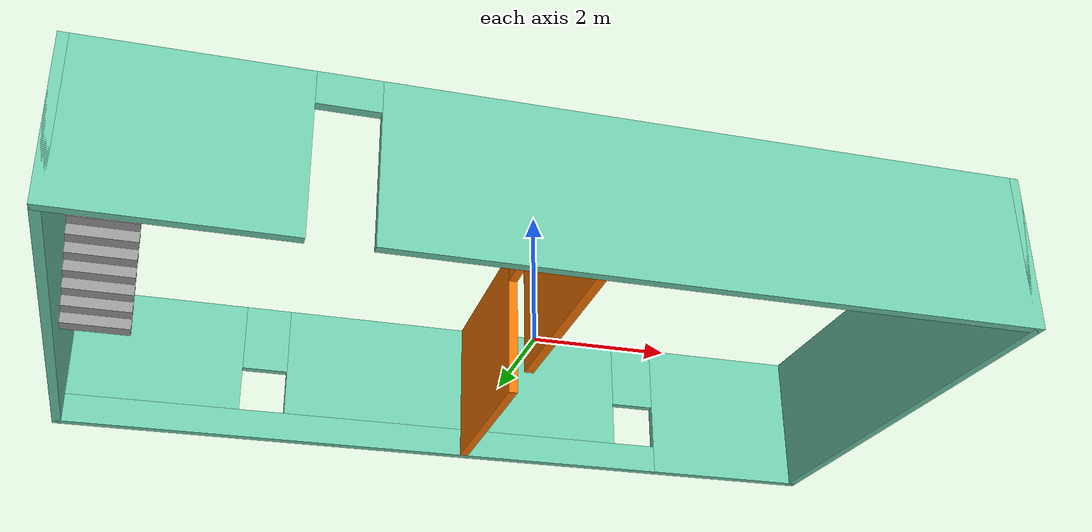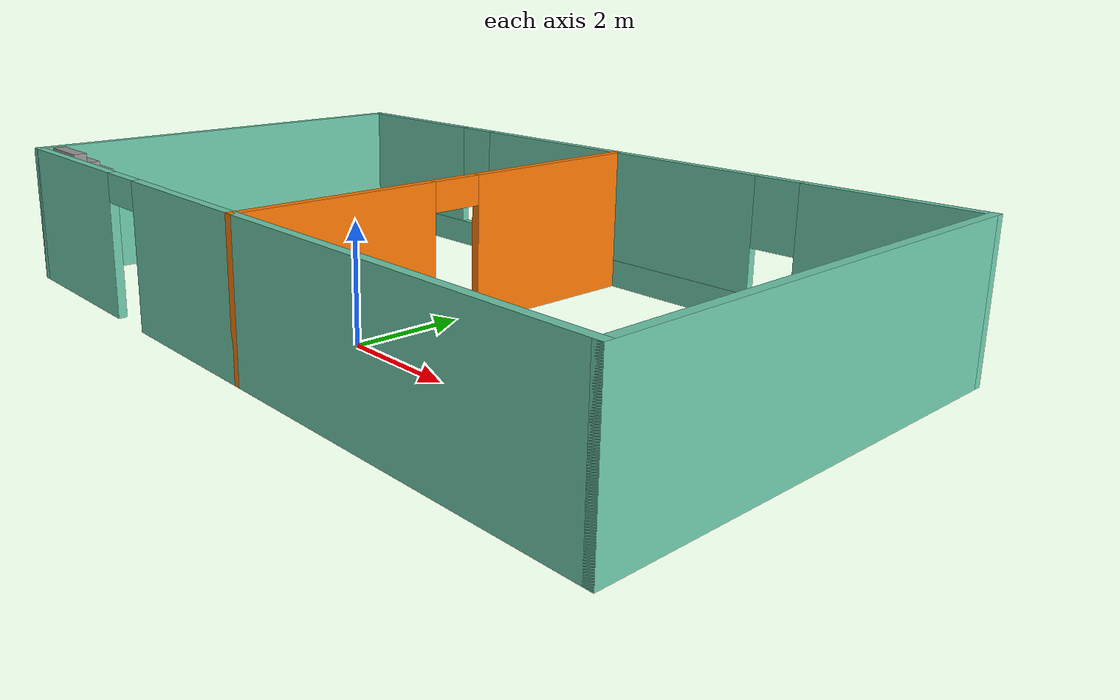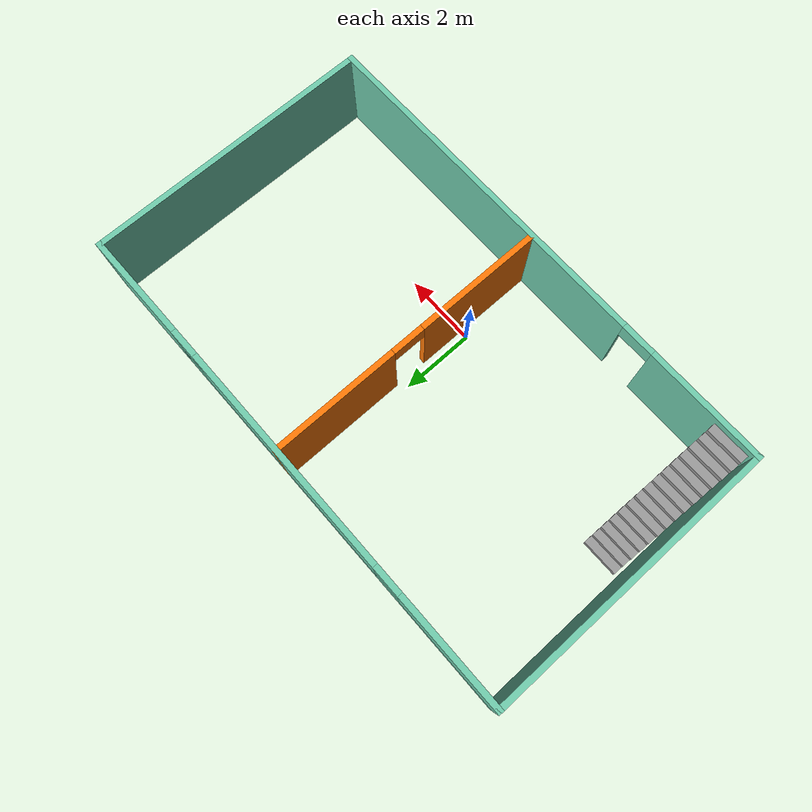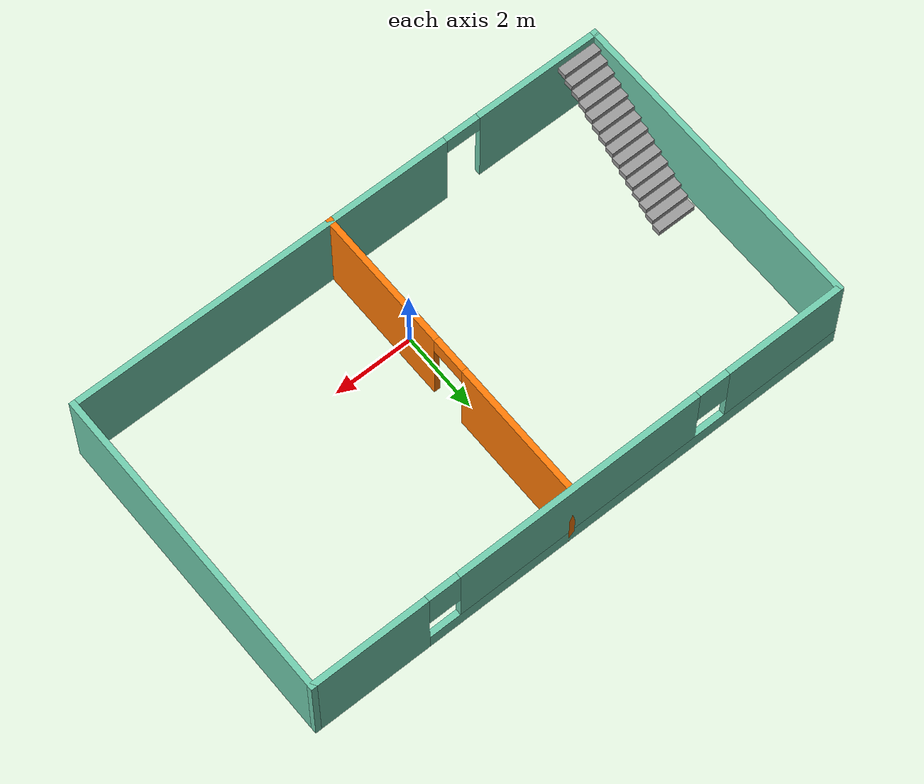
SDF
<?xml version='1.0'?>
<sdf version='1.6'>
  <model name='my_small_house'>
    <pose frame=''>0.022588 1.69125 0 0 -0 0</pose>
    <link name='Stairs_0'>
      <visual name='Stairs_0_Visual_0'>
        <pose frame=''>-6.25421 -0.363102 0.083333 0 -0 0</pose>
        <geometry>
          <box>
            <size>1 0.233333 0.166667</size>
          </box>
        </geometry>
        <material>
          <script>
            <uri>file://media/materials/scripts/gazebo.material</uri>
            <name>Gazebo/Grey</name>
          </script>
          <ambient>1 1 1 1</ambient>
        </material>
        <meta>
          <layer>0</layer>
        </meta>
      </visual>
      <collision name='Stairs_0_Collision_0'>
        <geometry>
          <box>
            <size>1 0.233333 0.166667</size>
          </box>
        </geometry>
        <pose frame=''>-6.25421 -0.363102 0.083333 0 -0 0</pose>
      </collision>
      <visual name='Stairs_0_Visual_1'>
        <pose frame=''>-6.25421 -0.596436 0.25 0 -0 0</pose>
        <geometry>
          <box>
            <size>1 0.233333 0.166667</size>
          </box>
        </geometry>
        <material>
          <script>
            <uri>file://media/materials/scripts/gazebo.material</uri>
            <name>Gazebo/Grey</name>
          </script>
          <ambient>1 1 1 1</ambient>
        </material>
        <meta>
          <layer>0</layer>
        </meta>
      </visual>
      <collision name='Stairs_0_Collision_1'>
        <geometry>
          <box>
            <size>1 0.233333 0.166667</size>
          </box>
        </geometry>
        <pose frame=''>-6.25421 -0.596436 0.25 0 -0 0</pose>
      </collision>
      <visual name='Stairs_0_Visual_2'>
        <pose frame=''>-6.25421 -0.829769 0.416667 0 -0 0</pose>
        <geometry>
          <box>
            <size>1 0.233333 0.166667</size>
          </box>
        </geometry>
        <material>
          <script>
            <uri>file://media/materials/scripts/gazebo.material</uri>
            <name>Gazebo/Grey</name>
          </script>
          <ambient>1 1 1 1</ambient>
        </material>
        <meta>
          <layer>0</layer>
        </meta>
      </visual>
      <collision name='Stairs_0_Collision_2'>
        <geometry>
          <box>
            <size>1 0.233333 0.166667</size>
          </box>
        </geometry>
        <pose frame=''>-6.25421 -0.829769 0.416667 0 -0 0</pose>
      </collision>
      <visual name='Stairs_0_Visual_3'>
        <pose frame=''>-6.25421 -1.0631 0.583333 0 -0 0</pose>
        <geometry>
          <box>
            <size>1 0.233333 0.166667</size>
          </box>
        </geometry>
        <material>
          <script>
            <uri>file://media/materials/scripts/gazebo.material</uri>
            <name>Gazebo/Grey</name>
          </script>
          <ambient>1 1 1 1</ambient>
        </material>
        <meta>
          <layer>0</layer>
        </meta>
      </visual>
      <collision name='Stairs_0_Collision_3'>
        <geometry>
          <box>
            <size>1 0.233333 0.166667</size>
          </box>
        </geometry>
        <pose frame=''>-6.25421 -1.0631 0.583333 0 -0 0</pose>
      </collision>
      <visual name='Stairs_0_Visual_4'>
        <pose frame=''>-6.25421 -1.29644 0.75 0 -0 0</pose>
        <geometry>
          <box>
            <size>1 0.233333 0.166667</size>
          </box>
        </geometry>
        <material>
          <script>
            <uri>file://media/materials/scripts/gazebo.material</uri>
            <name>Gazebo/Grey</name>
          </script>
          <ambient>1 1 1 1</ambient>
        </material>
        <meta>
          <layer>0</layer>
        </meta>
      </visual>
      <collision name='Stairs_0_Collision_4'>
        <geometry>
          <box>
            <size>1 0.233333 0.166667</size>
          </box>
        </geometry>
        <pose frame=''>-6.25421 -1.29644 0.75 0 -0 0</pose>
      </collision>
      <visual name='Stairs_0_Visual_5'>
        <pose frame=''>-6.25421 -1.52977 0.916667 0 -0 0</pose>
        <geometry>
          <box>
            <size>1 0.233333 0.166667</size>
          </box>
        </geometry>
        <material>
          <script>
            <uri>file://media/materials/scripts/gazebo.material</uri>
            <name>Gazebo/Grey</name>
          </script>
          <ambient>1 1 1 1</ambient>
        </material>
        <meta>
          <layer>0</layer>
        </meta>
      </visual>
      <collision name='Stairs_0_Collision_5'>
        <geometry>
          <box>
            <size>1 0.233333 0.166667</size>
          </box>
        </geometry>
        <pose frame=''>-6.25421 -1.52977 0.916667 0 -0 0</pose>
      </collision>
      <visual name='Stairs_0_Visual_6'>
        <pose frame=''>-6.25421 -1.7631 1.08333 0 -0 0</pose>
        <geometry>
          <box>
            <size>1 0.233333 0.166667</size>
          </box>
        </geometry>
        <material>
          <script>
            <uri>file://media/materials/scripts/gazebo.material</uri>
            <name>Gazebo/Grey</name>
          </script>
          <ambient>1 1 1 1</ambient>
        </material>
        <meta>
          <layer>0</layer>
        </meta>
      </visual>
      <collision name='Stairs_0_Collision_6'>
        <geometry>
          <box>
            <size>1 0.233333 0.166667</size>
          </box>
        </geometry>
        <pose frame=''>-6.25421 -1.7631 1.08333 0 -0 0</pose>
      </collision>
      <visual name='Stairs_0_Visual_7'>
        <pose frame=''>-6.25421 -1.99644 1.25 0 -0 0</pose>
        <geometry>
          <box>
            <size>1 0.233333 0.166667</size>
          </box>
        </geometry>
        <material>
          <script>
            <uri>file://media/materials/scripts/gazebo.material</uri>
            <name>Gazebo/Grey</name>
          </script>
          <ambient>1 1 1 1</ambient>
        </material>
        <meta>
          <layer>0</layer>
        </meta>
      </visual>
      <collision name='Stairs_0_Collision_7'>
        <geometry>
          <box>
            <size>1 0.233333 0.166667</size>
          </box>
        </geometry>
        <pose frame=''>-6.25421 -1.99644 1.25 0 -0 0</pose>
      </collision>
      <visual name='Stairs_0_Visual_8'>
        <pose frame=''>-6.25421 -2.22977 1.41667 0 -0 0</pose>
        <geometry>
          <box>
            <size>1 0.233333 0.166667</size>
          </box>
        </geometry>
        <material>
          <script>
            <uri>file://media/materials/scripts/gazebo.material</uri>
            <name>Gazebo/Grey</name>
          </script>
          <ambient>1 1 1 1</ambient>
        </material>
        <meta>
          <layer>0</layer>
        </meta>
      </visual>
      <collision name='Stairs_0_Collision_8'>
        <geometry>
          <box>
            <size>1 0.233333 0.166667</size>
          </box>
        </geometry>
        <pose frame=''>-6.25421 -2.22977 1.41667 0 -0 0</pose>
      </collision>
      <visual name='Stairs_0_Visual_9'>
        <pose frame=''>-6.25421 -2.4631 1.58333 0 -0 0</pose>
        <geometry>
          <box>
            <size>1 0.233333 0.166667</size>
          </box>
        </geometry>
        <material>
          <script>
            <uri>file://media/materials/scripts/gazebo.material</uri>
            <name>Gazebo/Grey</name>
          </script>
          <ambient>1 1 1 1</ambient>
        </material>
        <meta>
          <layer>0</layer>
        </meta>
      </visual>
      <collision name='Stairs_0_Collision_9'>
        <geometry>
          <box>
            <size>1 0.233333 0.166667</size>
          </box>
        </geometry>
        <pose frame=''>-6.25421 -2.4631 1.58333 0 -0 0</pose>
      </collision>
      <visual name='Stairs_0_Visual_10'>
        <pose frame=''>-6.25421 -2.69644 1.75 0 -0 0</pose>
        <geometry>
          <box>
            <size>1 0.233333 0.166667</size>
          </box>
        </geometry>
        <material>
          <script>
            <uri>file://media/materials/scripts/gazebo.material</uri>
            <name>Gazebo/Grey</name>
          </script>
          <ambient>1 1 1 1</ambient>
        </material>
        <meta>
          <layer>0</layer>
        </meta>
      </visual>
      <collision name='Stairs_0_Collision_10'>
        <geometry>
          <box>
            <size>1 0.233333 0.166667</size>
          </box>
        </geometry>
        <pose frame=''>-6.25421 -2.69644 1.75 0 -0 0</pose>
      </collision>
      <visual name='Stairs_0_Visual_11'>
        <pose frame=''>-6.25421 -2.92977 1.91667 0 -0 0</pose>
        <geometry>
          <box>
            <size>1 0.233333 0.166667</size>
          </box>
        </geometry>
        <material>
          <script>
            <uri>file://media/materials/scripts/gazebo.material</uri>
            <name>Gazebo/Grey</name>
          </script>
          <ambient>1 1 1 1</ambient>
        </material>
        <meta>
          <layer>0</layer>
        </meta>
      </visual>
      <collision name='Stairs_0_Collision_11'>
        <geometry>
          <box>
            <size>1 0.233333 0.166667</size>
          </box>
        </geometry>
        <pose frame=''>-6.25421 -2.92977 1.91667 0 -0 0</pose>
      </collision>
      <visual name='Stairs_0_Visual_12'>
        <pose frame=''>-6.25421 -3.1631 2.08333 0 -0 0</pose>
        <geometry>
          <box>
            <size>1 0.233333 0.166667</size>
          </box>
        </geometry>
        <material>
          <script>
            <uri>file://media/materials/scripts/gazebo.material</uri>
            <name>Gazebo/Grey</name>
          </script>
          <ambient>1 1 1 1</ambient>
        </material>
        <meta>
          <layer>0</layer>
        </meta>
      </visual>
      <collision name='Stairs_0_Collision_12'>
        <geometry>
          <box>
            <size>1 0.233333 0.166667</size>
          </box>
        </geometry>
        <pose frame=''>-6.25421 -3.1631 2.08333 0 -0 0</pose>
      </collision>
      <visual name='Stairs_0_Visual_13'>
        <pose frame=''>-6.25421 -3.39643 2.25 0 -0 0</pose>
        <geometry>
          <box>
            <size>1 0.233333 0.166667</size>
          </box>
        </geometry>
        <material>
          <script>
            <uri>file://media/materials/scripts/gazebo.material</uri>
            <name>Gazebo/Grey</name>
          </script>
          <ambient>1 1 1 1</ambient>
        </material>
        <meta>
          <layer>0</layer>
        </meta>
      </visual>
      <collision name='Stairs_0_Collision_13'>
        <geometry>
          <box>
            <size>1 0.233333 0.166667</size>
          </box>
        </geometry>
        <pose frame=''>-6.25421 -3.39643 2.25 0 -0 0</pose>
      </collision>
      <visual name='Stairs_0_Visual_14'>
        <pose frame=''>-6.25421 -3.62977 2.41667 0 -0 0</pose>
        <geometry>
          <box>
            <size>1 0.233333 0.166667</size>
          </box>
        </geometry>
        <material>
          <script>
            <uri>file://media/materials/scripts/gazebo.material</uri>
            <name>Gazebo/Grey</name>
          </script>
          <ambient>1 1 1 1</ambient>
        </material>
        <meta>
          <layer>0</layer>
        </meta>
      </visual>
      <collision name='Stairs_0_Collision_14'>
        <geometry>
          <box>
            <size>1 0.233333 0.166667</size>
          </box>
        </geometry>
        <pose frame=''>-6.25421 -3.62977 2.41667 0 -0 0</pose>
      </collision>
    </link>
    <link name='Wall_0'>
      <collision name='Wall_0_Collision'>
        <geometry>
          <box>
            <size>8 0.15 2.5</size>
          </box>
        </geometry>
        <pose frame=''>0 0 1.25 0 -0 0</pose>
      </collision>
      <visual name='Wall_0_Visual'>
        <pose frame=''>0 0 1.25 0 -0 0</pose>
        <geometry>
          <box>
            <size>8 0.15 2.5</size>
          </box>
        </geometry>
        <material>
          <script>
            <uri>file://media/materials/scripts/gazebo.material</uri>
            <name>Gazebo/Grey</name>
          </script>
          <ambient>0.435294 0.796078 0.67451 1</ambient>
        </material>
        <meta>
          <layer>0</layer>
        </meta>
      </visual>
      <pose frame=''>-6.925 0 0 0 -0 -1.5708</pose>
    </link>
    <link name='Wall_1'>
      <pose frame=''>0 -3.925 0 0 -0 0</pose>
      <visual name='Wall_1_Visual_0'>
        <pose frame=''>-5.34862 0 1.25 0 -0 0</pose>
        <geometry>
          <box>
            <size>3.30277 0.15 2.5</size>
          </box>
        </geometry>
        <material>
          <script>
            <uri>file://media/materials/scripts/gazebo.material</uri>
            <name>Gazebo/Grey</name>
          </script>
          <ambient>0.435294 0.796078 0.67451 1</ambient>
        </material>
        <meta>
          <layer>0</layer>
        </meta>
      </visual>
      <collision name='Wall_1_Collision_0'>
        <geometry>
          <box>
            <size>3.30277 0.15 2.5</size>
          </box>
        </geometry>
        <pose frame=''>-5.34862 0 1.25 0 -0 0</pose>
      </collision>
      <visual name='Wall_1_Visual_1'>
        <pose frame=''>2.10138 0 1.25 0 -0 0</pose>
        <geometry>
          <box>
            <size>9.79723 0.15 2.5</size>
          </box>
        </geometry>
        <material>
          <script>
            <uri>file://media/materials/scripts/gazebo.material</uri>
            <name>Gazebo/Grey</name>
          </script>
          <ambient>0.435294 0.796078 0.67451 1</ambient>
        </material>
        <meta>
          <layer>0</layer>
        </meta>
      </visual>
      <collision name='Wall_1_Collision_1'>
        <geometry>
          <box>
            <size>9.79723 0.15 2.5</size>
          </box>
        </geometry>
        <pose frame=''>2.10138 0 1.25 0 -0 0</pose>
      </collision>
      <visual name='Wall_1_Visual_2'>
        <pose frame=''>-3.24723 0 2.25 0 -0 0</pose>
        <geometry>
          <box>
            <size>0.9 0.15 0.5</size>
          </box>
        </geometry>
        <material>
          <script>
            <uri>file://media/materials/scripts/gazebo.material</uri>
            <name>Gazebo/Grey</name>
          </script>
          <ambient>0.435294 0.796078 0.67451 1</ambient>
        </material>
        <meta>
          <layer>0</layer>
        </meta>
      </visual>
      <collision name='Wall_1_Collision_2'>
        <geometry>
          <box>
            <size>0.9 0.15 0.5</size>
          </box>
        </geometry>
        <pose frame=''>-3.24723 0 2.25 0 -0 0</pose>
      </collision>
    </link>
    <link name='Wall_2'>
      <collision name='Wall_2_Collision'>
        <geometry>
          <box>
            <size>8 0.15 2.5</size>
          </box>
        </geometry>
        <pose frame=''>0 0 1.25 0 -0 0</pose>
      </collision>
      <visual name='Wall_2_Visual'>
        <pose frame=''>0 0 1.25 0 -0 0</pose>
        <geometry>
          <box>
            <size>8 0.15 2.5</size>
          </box>
        </geometry>
        <material>
          <script>
            <uri>file://media/materials/scripts/gazebo.material</uri>
            <name>Gazebo/Grey</name>
          </script>
          <ambient>0.435294 0.796078 0.67451 1</ambient>
        </material>
        <meta>
          <layer>0</layer>
        </meta>
      </visual>
      <pose frame=''>6.925 0 0 0 -0 1.5708</pose>
    </link>
    <link name='Wall_3'>
      <pose frame=''>0 3.925 0 0 -0 3.14159</pose>
      <visual name='Wall_3_Visual_0'>
        <pose frame=''>-5.51128 0 1.25 0 -0 0</pose>
        <geometry>
          <box>
            <size>2.97744 0.15 2.5</size>
          </box>
        </geometry>
        <material>
          <script>
            <uri>file://media/materials/scripts/gazebo.material</uri>
            <name>Gazebo/Grey</name>
          </script>
          <ambient>0.435294 0.796078 0.67451 1</ambient>
        </material>
        <meta>
          <layer>0</layer>
        </meta>
      </visual>
      <collision name='Wall_3_Collision_0'>
        <geometry>
          <box>
            <size>2.97744 0.15 2.5</size>
          </box>
        </geometry>
        <pose frame=''>-5.51128 0 1.25 0 -0 0</pose>
      </collision>
      <visual name='Wall_3_Visual_1'>
        <pose frame=''>1.48872 0 0.25 0 -0 0</pose>
        <geometry>
          <box>
            <size>11.0226 0.15 0.5</size>
          </box>
        </geometry>
        <material>
          <script>
            <uri>file://media/materials/scripts/gazebo.material</uri>
            <name>Gazebo/Grey</name>
          </script>
          <ambient>0.435294 0.796078 0.67451 1</ambient>
        </material>
        <meta>
          <layer>0</layer>
        </meta>
      </visual>
      <collision name='Wall_3_Collision_1'>
        <geometry>
          <box>
            <size>11.0226 0.15 0.5</size>
          </box>
        </geometry>
        <pose frame=''>1.48872 0 0.25 0 -0 0</pose>
      </collision>
      <visual name='Wall_3_Visual_2'>
        <pose frame=''>-0.072009 0 1.5 0 -0 0</pose>
        <geometry>
          <box>
            <size>6.3011 0.15 2</size>
          </box>
        </geometry>
        <material>
          <script>
            <uri>file://media/materials/scripts/gazebo.material</uri>
            <name>Gazebo/Grey</name>
          </script>
          <ambient>0.435294 0.796078 0.67451 1</ambient>
        </material>
        <meta>
          <layer>0</layer>
        </meta>
      </visual>
      <collision name='Wall_3_Collision_2'>
        <geometry>
          <box>
            <size>6.3011 0.15 2</size>
          </box>
        </geometry>
        <pose frame=''>-0.072009 0 1.5 0 -0 0</pose>
      </collision>
      <visual name='Wall_3_Visual_3'>
        <pose frame=''>5.43927 0 1.5 0 -0 0</pose>
        <geometry>
          <box>
            <size>3.12146 0.15 2</size>
          </box>
        </geometry>
        <material>
          <script>
            <uri>file://media/materials/scripts/gazebo.material</uri>
            <name>Gazebo/Grey</name>
          </script>
          <ambient>0.435294 0.796078 0.67451 1</ambient>
        </material>
        <meta>
          <layer>0</layer>
        </meta>
      </visual>
      <collision name='Wall_3_Collision_3'>
        <geometry>
          <box>
            <size>3.12146 0.15 2</size>
          </box>
        </geometry>
        <pose frame=''>5.43927 0 1.5 0 -0 0</pose>
      </collision>
      <visual name='Wall_3_Visual_4'>
        <pose frame=''>-3.62256 0 1.9 0 -0 0</pose>
        <geometry>
          <box>
            <size>0.8 0.15 1.2</size>
          </box>
        </geometry>
        <material>
          <script>
            <uri>file://media/materials/scripts/gazebo.material</uri>
            <name>Gazebo/Grey</name>
          </script>
          <ambient>0.435294 0.796078 0.67451 1</ambient>
        </material>
        <meta>
          <layer>0</layer>
        </meta>
      </visual>
      <collision name='Wall_3_Collision_4'>
        <geometry>
          <box>
            <size>0.8 0.15 1.2</size>
          </box>
        </geometry>
        <pose frame=''>-3.62256 0 1.9 0 -0 0</pose>
      </collision>
      <visual name='Wall_3_Visual_5'>
        <pose frame=''>3.47854 0 1.9 0 -0 0</pose>
        <geometry>
          <box>
            <size>0.8 0.15 1.2</size>
          </box>
        </geometry>
        <material>
          <script>
            <uri>file://media/materials/scripts/gazebo.material</uri>
            <name>Gazebo/Grey</name>
          </script>
          <ambient>0.435294 0.796078 0.67451 1</ambient>
        </material>
        <meta>
          <layer>0</layer>
        </meta>
      </visual>
      <collision name='Wall_3_Collision_5'>
        <geometry>
          <box>
            <size>0.8 0.15 1.2</size>
          </box>
        </geometry>
        <pose frame=''>3.47854 0 1.9 0 -0 0</pose>
      </collision>
    </link>
    <link name='Wall_5'>
      <pose frame=''>0.268619 0 0 0 -0 -1.5708</pose>
      <visual name='Wall_5_Visual_0'>
        <pose frame=''>-2.24453 0 1.25 0 -0 0</pose>
        <geometry>
          <box>
            <size>3.51094 0.15 2.5</size>
          </box>
        </geometry>
        <material>
          <script>
            <uri>file://media/materials/scripts/gazebo.material</uri>
            <name>Gazebo/Grey</name>
          </script>
          <ambient>0.996078 0.47451 0.0196078 1</ambient>
        </material>
        <meta>
          <layer>0</layer>
        </meta>
      </visual>
      <collision name='Wall_5_Collision_0'>
        <geometry>
          <box>
            <size>3.51094 0.15 2.5</size>
          </box>
        </geometry>
        <pose frame=''>-2.24453 0 1.25 0 -0 0</pose>
      </collision>
      <visual name='Wall_5_Visual_1'>
        <pose frame=''>2.20547 0 1.25 0 -0 0</pose>
        <geometry>
          <box>
            <size>3.58906 0.15 2.5</size>
          </box>
        </geometry>
        <material>
          <script>
            <uri>file://media/materials/scripts/gazebo.material</uri>
            <name>Gazebo/Grey</name>
          </script>
          <ambient>0.996078 0.47451 0.0196078 1</ambient>
        </material>
        <meta>
          <layer>0</layer>
        </meta>
      </visual>
      <collision name='Wall_5_Collision_1'>
        <geometry>
          <box>
            <size>3.58906 0.15 2.5</size>
          </box>
        </geometry>
        <pose frame=''>2.20547 0 1.25 0 -0 0</pose>
      </collision>
      <visual name='Wall_5_Visual_2'>
        <pose frame=''>-0.039058 0 2.25 0 -0 0</pose>
        <geometry>
          <box>
            <size>0.9 0.15 0.5</size>
          </box>
        </geometry>
        <material>
          <script>
            <uri>file://media/materials/scripts/gazebo.material</uri>
            <name>Gazebo/Grey</name>
          </script>
          <ambient>0.996078 0.47451 0.0196078 1</ambient>
        </material>
        <meta>
          <layer>0</layer>
        </meta>
      </visual>
      <collision name='Wall_5_Collision_2'>
        <geometry>
          <box>
            <size>0.9 0.15 0.5</size>
          </box>
        </geometry>
        <pose frame=''>-0.039058 0 2.25 0 -0 0</pose>
      </collision>
    </link>
    <static>1</static>
  </model>
</sdf>
